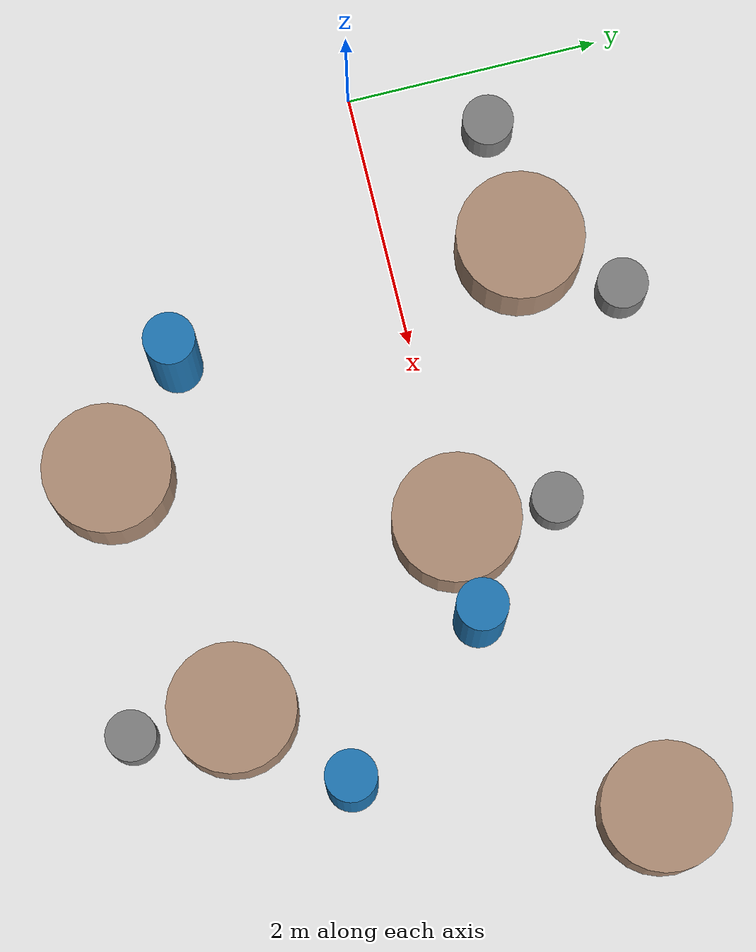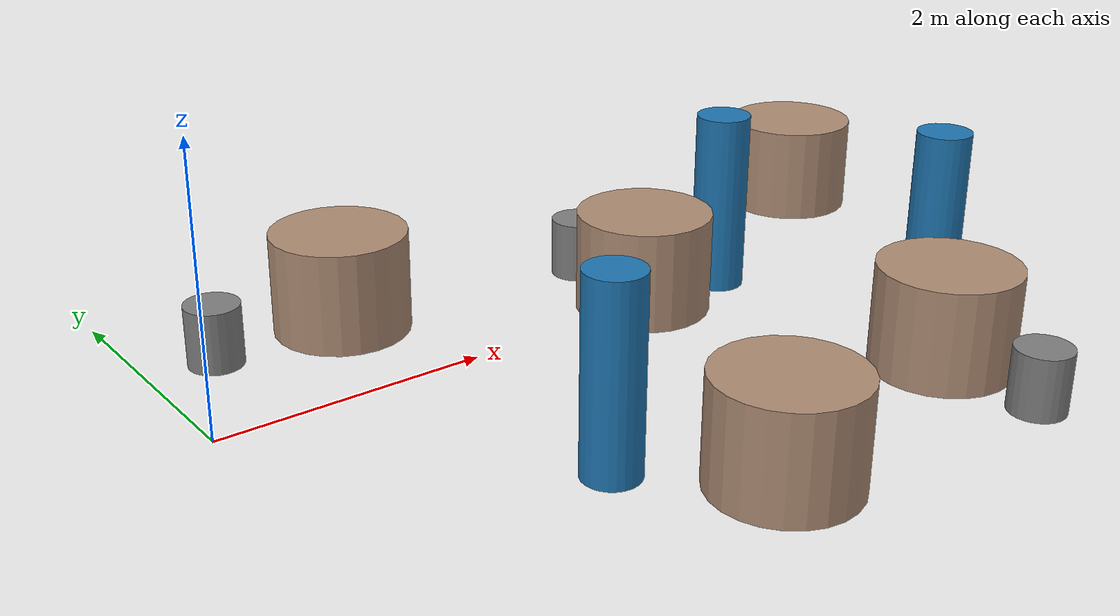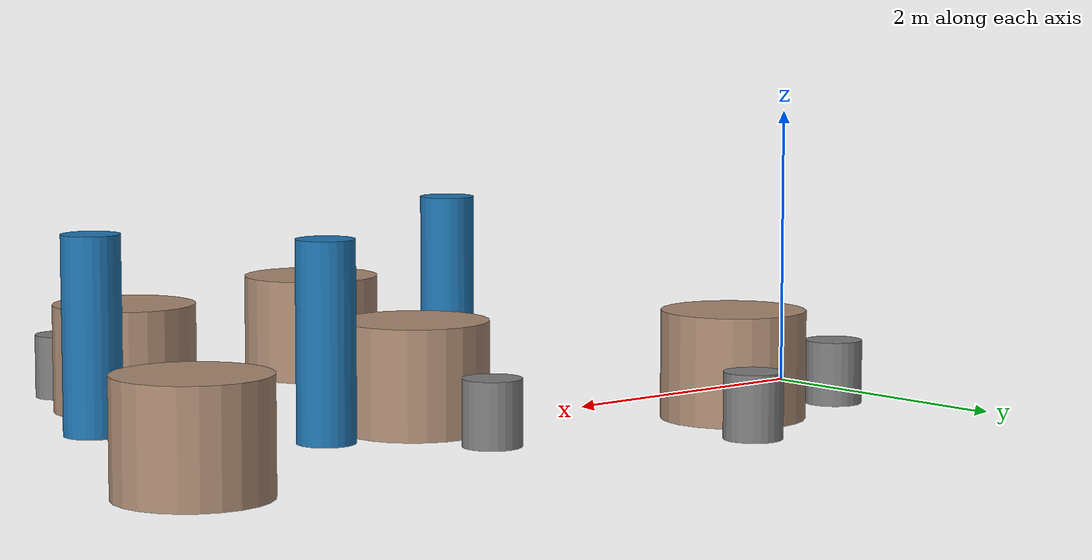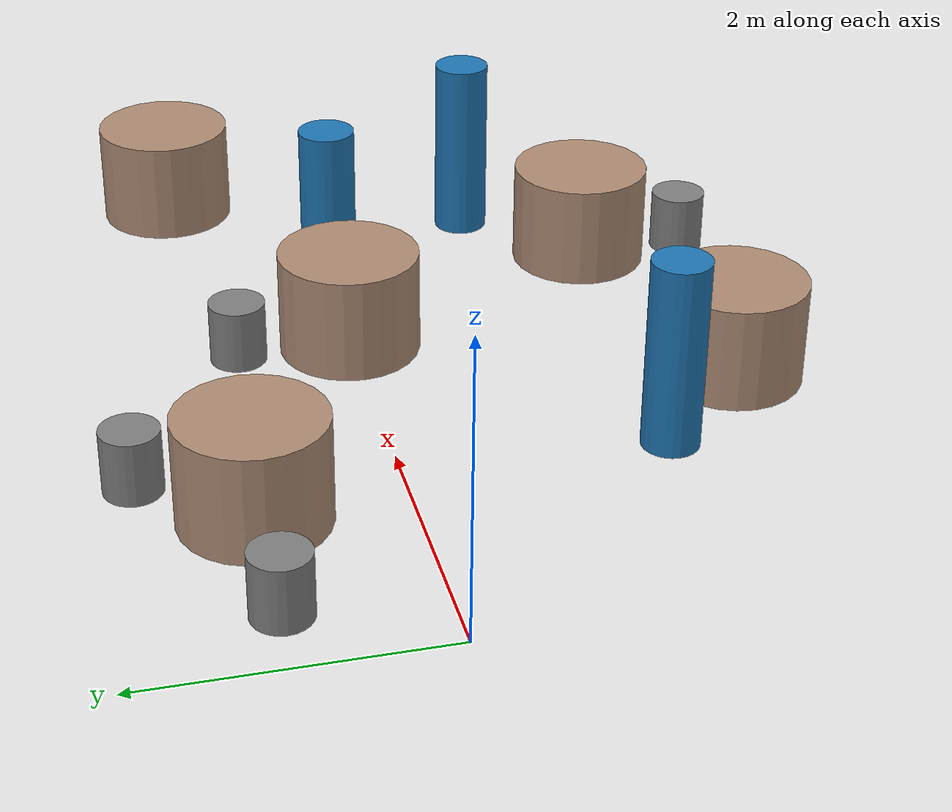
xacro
<?xml version="1.0" encoding="utf-8"?>
<robot name="Obstacles">
  <material name="table_color">
    <color rgba="0.686 0.553 0.459 1.0"/>
  </material>

  <material name="chair_color">
    <color rgba="0.5 0.5 0.5 1.0"/>
  </material>

  <material name="person_color">
    <color rgba="0.122 0.467 0.706 1.0"/>
  </material>

  <link name="obstacle_base_link"></link>

  <link name="table1_link">
    <visual>
      <origin rpy="0 0 0" xyz="1.5 1.0 0.375"/>
      <geometry>
        <cylinder length="0.75" radius="0.5"/>
      </geometry>
      <material name="table_color"/>
    </visual>
    <collision>
      <origin rpy="0 0 0" xyz="1.5 1.0 0.375"/>
      <geometry>
        <cylinder length="0.75" radius="0.5"/>
      </geometry>
    </collision>
  </link>
  <joint name="table1_link_joint" type="fixed">
    <parent link="obstacle_base_link"/>
    <child link="table1_link"/>
    <origin rpy="0 0 0" xyz="0 0 0"/>
  </joint>

  <link name="chair1_1_link">
    <visual>
      <origin rpy="0 0 0" xyz="0.5 1.0 0.225"/>
      <geometry>
        <cylinder length="0.45" radius="0.2"/>
      </geometry>
      <material name="chair_color"/>
    </visual>
    <collision>
      <origin rpy="0 0 0" xyz="0.5 1.0 0.225"/>
      <geometry>
        <cylinder length="0.45" radius="0.2"/>
      </geometry>
    </collision>
  </link>
  <joint name="chair1_1_link_joint" type="fixed">
    <parent link="obstacle_base_link"/>
    <child link="chair1_1_link"/>
    <origin rpy="0 0 0" xyz="0 0 0"/>
  </joint>

  <link name="chair1_2_link">
    <visual>
      <origin rpy="0 0 0" xyz="2.0 1.7 0.225"/>
      <geometry>
        <cylinder length="0.45" radius="0.2"/>
      </geometry>
      <material name="chair_color"/>
    </visual>
    <collision>
      <origin rpy="0 0 0" xyz="2.0 1.7 0.225"/>
      <geometry>
        <cylinder length="0.45" radius="0.2"/>
      </geometry>
    </collision>
  </link>
  <joint name="chair1_2_link_joint" type="fixed">
    <parent link="obstacle_base_link"/>
    <child link="chair1_2_link"/>
    <origin rpy="0 0 0" xyz="0 0 0"/>
  </joint>

  <link name="table2_link">
    <visual>
      <origin rpy="0 0 0" xyz="2.5 -2.5 0.375"/>
      <geometry>
        <cylinder length="0.75" radius="0.5"/>
      </geometry>
      <material name="table_color"/>
    </visual>
    <collision>
      <origin rpy="0 0 0" xyz="2.5 -2.5 0.375"/>
      <geometry>
        <cylinder length="0.75" radius="0.5"/>
      </geometry>
    </collision>
  </link>

  <joint name="table2_link_joint" type="fixed">
    <parent link="obstacle_base_link"/>
    <child link="table2_link"/>
    <origin rpy="0 0 0" xyz="0 0 0"/>
  </joint>

  <link name="chair2_1_link">
    <visual>
      <origin rpy="0 0 0" xyz="1.75 -1.8 0.675"/>
      <geometry>
        <cylinder length="1.35" radius="0.2"/>
      </geometry>
      <material name="person_color"/>
    </visual>
    <collision>
      <origin rpy="0 0 0" xyz="1.75 -1.8 0.675"/>
      <geometry>
        <cylinder length="1.35" radius="0.2"/>
      </geometry>
    </collision>
  </link>
  <joint name="chair2_1_link_joint" type="fixed">
    <parent link="obstacle_base_link"/>
    <child link="chair2_1_link"/>
    <origin rpy="0 0 0" xyz="0 0 0"/>
  </joint>

  <link name="table3_link">
    <visual>
      <origin rpy="0 0 0" xyz="3.5 0.0 0.375"/>
      <geometry>
        <cylinder length="0.75" radius="0.5"/>
      </geometry>
      <material name="table_color"/>
    </visual>
    <collision>
      <origin rpy="0 0 0" xyz="3.5 0.0 0.375"/>
      <geometry>
        <cylinder length="0.75" radius="0.5"/>
      </geometry>
    </collision>
  </link>

  <joint name="table3_link_joint" type="fixed">
    <parent link="obstacle_base_link"/>
    <child link="table3_link"/>
    <origin rpy="0 0 0" xyz="0 0 0"/>
  </joint>

  <link name="chair3_1_link">
    <visual>
      <origin rpy="0 0 0" xyz="4.25 0 0.675"/>
      <geometry>
        <cylinder length="1.35" radius="0.2"/>
      </geometry>
      <material name="person_color"/>
    </visual>
    <collision>
      <origin rpy="0 0 0" xyz="4.25 0 0.675"/>
      <geometry>
        <cylinder length="1.35" radius="0.2"/>
      </geometry>
    </collision>
  </link>
  <joint name="chair3_1_link_joint" type="fixed">
    <parent link="obstacle_base_link"/>
    <child link="chair3_1_link"/>
    <origin rpy="0 0 0" xyz="0 0 0"/>
  </joint>

  <link name="chair3_2_link">
    <visual>
      <origin rpy="0 0 0" xyz="3.5 0.8 0.225"/>
      <geometry>
        <cylinder length="0.45" radius="0.2"/>
      </geometry>
      <material name="chair_color"/>
    </visual>
    <collision>
      <origin rpy="0 0 0" xyz="3.5 0.8 0.225"/>
      <geometry>
        <cylinder length="0.45" radius="0.2"/>
      </geometry>
    </collision>
  </link>
  <joint name="chair3_2_link_joint" type="fixed">
    <parent link="obstacle_base_link"/>
    <child link="chair3_2_link"/>
    <origin rpy="0 0 0" xyz="0 0 0"/>
  </joint>

  <link name="table4_link">
    <visual>
      <origin rpy="0 0 0" xyz="4.5 -2.0 0.375"/>
      <geometry>
        <cylinder length="0.75" radius="0.5"/>
      </geometry>
      <material name="table_color"/>
    </visual>
    <collision>
      <origin rpy="0 0 0" xyz="4.5 -2.0 0.375"/>
      <geometry>
        <cylinder length="0.75" radius="0.5"/>
      </geometry>
    </collision>
  </link>

  <joint name="table4_link_joint" type="fixed">
    <parent link="obstacle_base_link"/>
    <child link="table4_link"/>
    <origin rpy="0 0 0" xyz="0 0 0"/>
  </joint>

  <link name="chair4_1_link">
    <visual>
      <origin rpy="0 0 0" xyz="4.5 -2.8 0.225"/>
      <geometry>
        <cylinder length="0.45" radius="0.2"/>
      </geometry>
      <material name="chair_color"/>
    </visual>
    <collision>
      <origin rpy="0 0 0" xyz="4.5 -2.8 0.225"/>
      <geometry>
        <cylinder length="0.45" radius="0.2"/>
      </geometry>
    </collision>
  </link>
  <joint name="chair4_1_link_joint" type="fixed">
    <parent link="obstacle_base_link"/>
    <child link="chair4_1_link"/>
    <origin rpy="0 0 0" xyz="0 0 0"/>
  </joint>

  <link name="chair4_2_link">
    <visual>
      <origin rpy="0 0 0" xyz="5.25 -1.25 0.675"/>
      <geometry>
        <cylinder length="1.35" radius="0.2"/>
      </geometry>
      <material name="person_color"/>
    </visual>
    <collision>
      <origin rpy="0 0 0" xyz="5.25 -1.25 0.675"/>
      <geometry>
        <cylinder length="1.35" radius="0.2"/>
      </geometry>
    </collision>
  </link>
  <joint name="chair4_2_link_joint" type="fixed">
    <parent link="obstacle_base_link"/>
    <child link="chair4_2_link"/>
    <origin rpy="0 0 0" xyz="0 0 0"/>
  </joint>

  <link name="table5_link">
    <visual>
      <origin rpy="0 0 0" xyz="6.0 1.0 0.375"/>
      <geometry>
        <cylinder length="0.75" radius="0.5"/>
      </geometry>
      <material name="table_color"/>
    </visual>
    <collision>
      <origin rpy="0 0 0" xyz="6.0 1.0 0.375"/>
      <geometry>
        <cylinder length="0.75" radius="0.5"/>
      </geometry>
    </collision>
  </link>

  <joint name="table5_link_joint" type="fixed">
    <parent link="obstacle_base_link"/>
    <child link="table5_link"/>
    <origin rpy="0 0 0" xyz="0 0 0"/>
  </joint>

</robot>
